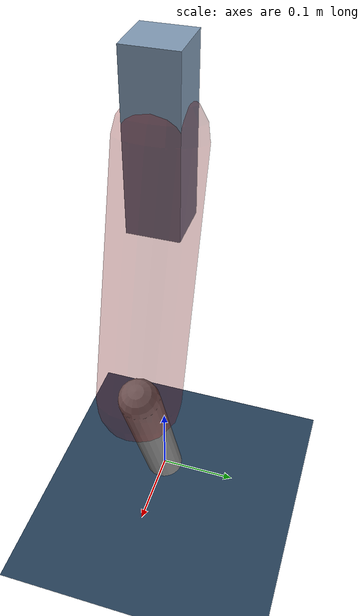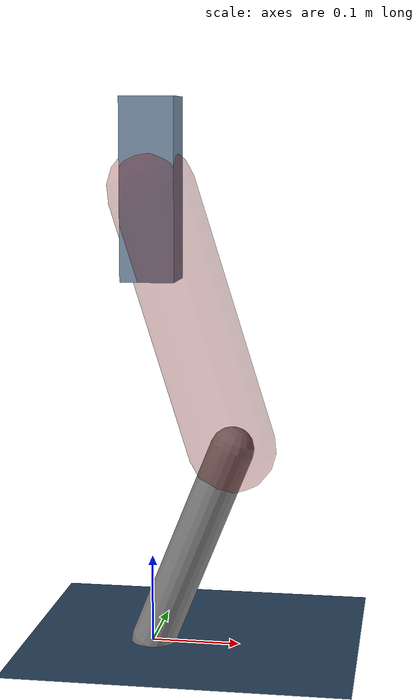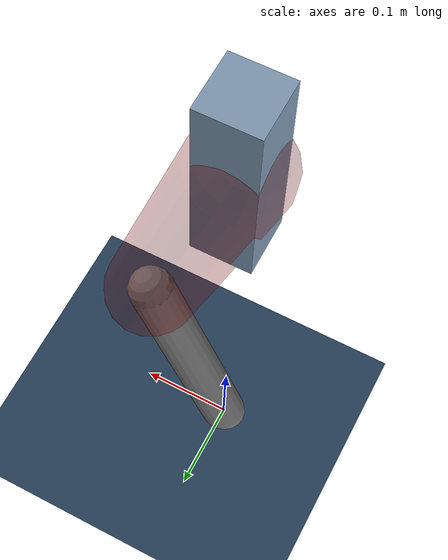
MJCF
<mujoco model="Hopper2D">
	<compiler inertiafromgeom="true" angle="radian" />
	<option timestep="0.001" integrator="implicit" cone="elliptic" solver="Newton" tolerance="1e-10" />

	<default>
		<geom contype="1" conaffinity="1" condim="3" friction="2 0.005 0.0001" solref="0.005 1" />
		<joint limited="true" damping="0.1" />
	</default>

	<asset>
		<texture name="skybox" type="skybox" builtin="gradient" rgb1=".4 .6 .8" rgb2="0 0 0" width="800" height="800" />
		<texture name="grid" type="2d" builtin="checker" rgb1=".1 .2 .3" rgb2=".2 .3 .4" width="300" height="300" mark="edge" markrgb=".2 .3 .4" />
		<material name="ground" texture="grid" texrepeat="1 1" texuniform="true" reflectance="0.1" />
		<material name="leg" rgba="0.5 0.6 0.7 1" />
	</asset>

	<worldbody>

		<geom name="floor" type="plane" size="5 5 0.25" material="ground" />

		<light directional="false" diffuse="0.8 0.8 0.8" specular="0.3 0.3 0.3" pos="0 0 2" dir="0 0 -1" />
		<light mode="targetbodycom" target="base" directional="false" diffuse="0.8 0.8 0.8" specular="0.3 0.3 0.3" pos="0 0 2" dir="0 0 -1" />

		<camera name="fixed" pos="0 -2 1" xyaxes="1 0 0 0 0 1" />
		<camera name="tracking" mode="trackcom" pos="0 -3 1" />

		<body name="root" pos="0 0 0.5165664577797511">
			<joint name="slide_x" type="slide" axis="1 0 0" range="-100 100" />
			<joint name="slide_z" type="slide" axis="0 0 1" range="0 10" />

			<body name="base" pos="0 0 0">
				<geom name="torso" type="box" size="0.03 0.03 0.1" mass="2.099" material="leg" />

				<body name="link1" pos="0 0 0" euler="0 1.2643087965127948 0">
					<joint type="hinge" axis="0 -1 0" pos="0 0 0" name="hinge1" limited="true" range="-3.14 3.14" stiffness="0" damping="0.1" />
					<geom name="thigh" type="capsule" fromto="0 0 0 0.30198166230737156 0 0" size="0.05" rgba="0.5 0 0 0.3" mass="0.9940504882299032" />

					<body name="link2" pos="0.30198166230737156 0 0" euler="0 0.6856678281369584 0">
						<joint type="hinge" axis="0 -1 0" pos="0 0 0" name="hinge2" limited="true" range="-3.14 3.14" stiffness="0" damping="0.1" />
						<geom name="shank" type="capsule" fromto="0 0 0 0.24614119248782618 0 0" size="0.025" mass="0.4393270732390435" />

					</body>
				</body>
			</body>
		</body>
	</worldbody>

	<actuator>
		<motor name="torque1" joint="hinge1" ctrlrange="-29.87315775286 29.87315775286" ctrllimited="true" gear="1" />
		<motor name="torque2" joint="hinge2" ctrlrange="-118.27360811108997 118.27360811108997" ctrllimited="true" gear="1" />
	</actuator>
</mujoco>
